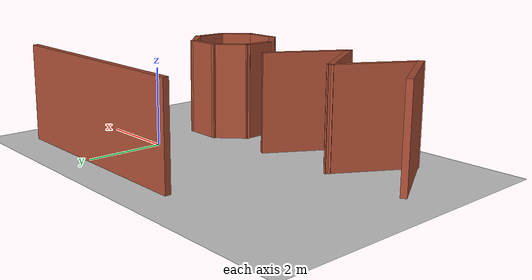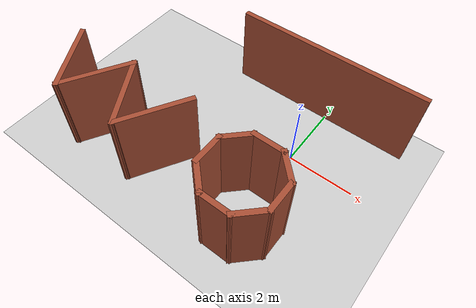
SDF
<sdf version="1.6">
 <world name="default">
  <light name="sun" type="directional">
   <pose>0 0 10 0 -0 0</pose>
   <diffuse>0.8 0.8 0.8 1</diffuse>
   <specular>0.2 0.2 0.2 1</specular>
   <attenuation>
    <range>1000</range>
    <constant>0.9</constant>
    <linear>0.01</linear>
    <quadratic>0.001</quadratic>
   </attenuation>
   <direction>-0.5 0.1 -0.9</direction>
  </light>
  <model name="ground_plane">
   <static>1</static>
   <link name="link">
    <collision name="collision">
     <geometry><plane><normal>0 0 1</normal><size>100 100</size></plane></geometry>
     <surface>
      <contact><collide_bitmask>65535</collide_bitmask></contact>
      <friction><ode><mu>100</mu><mu2>50</mu2></ode></friction>
     </surface>
    </collision>
    <visual name="visual">
     <cast_shadows>0</cast_shadows>
     <geometry><plane><normal>0 0 1</normal><size>100 100</size></plane></geometry>
     <material>
      <script><uri>file://media/materials/scripts/gazebo.material</uri><name>Gazebo/Grey</name></script>
     </material>
    </visual>
   </link>
  </model>
  <gravity>0 0 -9.8</gravity>
  <magnetic_field>6e-06 2.3e-05 -4.2e-05</magnetic_field>
  <atmosphere type="adiabatic"/>
  <physics name="default_physics" default="0" type="ode">
   <max_step_size>0.001</max_step_size>
   <real_time_factor>1</real_time_factor>
   <real_time_update_rate>1000</real_time_update_rate>
  </physics>
  <scene><ambient>0.4 0.4 0.4 1</ambient><background>0.7 0.7 0.7 1</background><shadows>1</shadows></scene>
  <audio><device>default</device></audio>
  <spherical_coordinates>
   <surface_model>EARTH_WGS84</surface_model>
   <latitude_deg>0</latitude_deg>
   <longitude_deg>0</longitude_deg>
   <elevation>0</elevation>
   <heading_deg>0</heading_deg>
  </spherical_coordinates>
  <model name="Reactive_Robot_World">
   <pose>-1.99873 -0.816574 0 0 -0 0</pose>
   <link name="Wall_10">
    <collision name="Wall_10_Collision">
     <geometry><box><size>1 0.15 2.5</size></box></geometry>
     <pose>0 0 1.25 0 -0 0</pose>
    </collision>
    <visual name="Wall_10_Visual">
     <pose>0 0 1.25 0 -0 0</pose>
     <geometry><box><size>1 0.15 2.5</size></box></geometry>
     <material>
      <script><uri>file://media/materials/scripts/gazebo.material</uri><name>Gazebo/Bricks</name></script>
      <ambient>1 1 1 1</ambient>
     </material>
     <meta><layer>0</layer></meta>
    </visual>
    <pose>1.33821 -2.49499 0 0 -0 -0.785398</pose>
   </link>
   <link name="Wall_11">
    <collision name="Wall_11_Collision">
     <geometry><box><size>1 0.15 2.5</size></box></geometry>
     <pose>0 0 1.25 0 -0 0</pose>
    </collision>
    <visual name="Wall_11_Visual">
     <pose>0 0 1.25 0 -0 0</pose>
     <geometry><box><size>1 0.15 2.5</size></box></geometry>
     <material>
      <script><uri>file://media/materials/scripts/gazebo.material</uri><name>Gazebo/Bricks</name></script>
      <ambient>1 1 1 1</ambient>
     </material>
     <meta><layer>0</layer></meta>
    </visual>
    <pose>2.06373 -2.79551 0 0 -0 0</pose>
   </link>
   <link name="Wall_12">
    <collision name="Wall_12_Collision">
     <geometry><box><size>1 0.15 2.5</size></box></geometry>
     <pose>0 0 1.25 0 -0 0</pose>
    </collision>
    <visual name="Wall_12_Visual">
     <pose>0 0 1.25 0 -0 0</pose>
     <geometry><box><size>1 0.15 2.5</size></box></geometry>
     <material>
      <script><uri>file://media/materials/scripts/gazebo.material</uri><name>Gazebo/Bricks</name></script>
      <ambient>1 1 1 1</ambient>
     </material>
     <meta><layer>0</layer></meta>
    </visual>
    <pose>2.78925 -2.49499 0 0 -0 0.785398</pose>
   </link>
   <link name="Wall_13">
    <collision name="Wall_13_Collision">
     <geometry><box><size>1 0.15 2.5</size></box></geometry>
     <pose>0 0 1.25 0 -0 0</pose>
    </collision>
    <visual name="Wall_13_Visual">
     <pose>0 0 1.25 0 -0 0</pose>
     <geometry><box><size>1 0.15 2.5</size></box></geometry>
     <material>
      <script><uri>file://media/materials/scripts/gazebo.material</uri><name>Gazebo/Bricks</name></script>
      <ambient>1 1 1 1</ambient>
     </material>
     <meta><layer>0</layer></meta>
    </visual>
    <pose>3.08977 -1.76947 0 0 -0 1.5708</pose>
   </link>
   <link name="Wall_14">
    <collision name="Wall_14_Collision">
     <geometry><box><size>1 0.15 2.5</size></box></geometry>
     <pose>0 0 1.25 0 -0 0</pose>
    </collision>
    <visual name="Wall_14_Visual">
     <pose>0 0 1.25 0 -0 0</pose>
     <geometry><box><size>1 0.15 2.5</size></box></geometry>
     <material>
      <script><uri>file://media/materials/scripts/gazebo.material</uri><name>Gazebo/Bricks</name></script>
      <ambient>1 1 1 1</ambient>
     </material>
     <meta><layer>0</layer></meta>
    </visual>
    <pose>2.78925 -1.04395 0 0 -0 2.35619</pose>
   </link>
   <link name="Wall_19">
    <collision name="Wall_19_Collision">
     <geometry><box><size>5.75 0.15 2.5</size></box></geometry>
     <pose>0 0 1.25 0 -0 0</pose>
    </collision>
    <visual name="Wall_19_Visual">
     <pose>0 0 1.25 0 -0 0</pose>
     <geometry><box><size>5.75 0.15 2.5</size></box></geometry>
     <material>
      <script><uri>file://media/materials/scripts/gazebo.material</uri><name>Gazebo/Bricks</name></script>
      <ambient>1 1 1 1</ambient>
     </material>
     <meta><layer>0</layer></meta>
    </visual>
    <pose>1.66873 2.82657 0 0 -0 0</pose>
   </link>
   <link name="Wall_2">
    <collision name="Wall_2_Collision">
     <geometry><box><size>2.25 0.15 2.5</size></box></geometry>
     <pose>0 0 1.25 0 -0 0</pose>
    </collision>
    <visual name="Wall_2_Visual">
     <pose>0 0 1.25 0 -0 0</pose>
     <geometry><box><size>2.25 0.15 2.5</size></box></geometry>
     <material>
      <script><uri>file://media/materials/scripts/gazebo.material</uri><name>Gazebo/Bricks</name></script>
      <ambient>1 1 1 1</ambient>
     </material>
     <meta><layer>0</layer></meta>
    </visual>
    <pose>-3.91627 -1.70275 0 0 -0 -1.0472</pose>
   </link>
   <link name="Wall_3">
    <collision name="Wall_3_Collision">
     <geometry><box><size>2.25 0.15 2.5</size></box></geometry>
     <pose>0 0 1.25 0 -0 0</pose>
    </collision>
    <visual name="Wall_3_Visual">
     <pose>0 0 1.25 0 -0 0</pose>
     <geometry><box><size>2.25 0.15 2.5</size></box></geometry>
     <material>
      <script><uri>file://media/materials/scripts/gazebo.material</uri><name>Gazebo/Bricks</name></script>
      <ambient>1 1 1 1</ambient>
     </material>
     <meta><layer>0</layer></meta>
    </visual>
    <pose>-2.86627 -1.70275 0 0 -0 1.0472</pose>
   </link>
   <link name="Wall_4">
    <collision name="Wall_4_Collision">
     <geometry><box><size>2.25 0.15 2.5</size></box></geometry>
     <pose>0 0 1.25 0 -0 0</pose>
    </collision>
    <visual name="Wall_4_Visual">
     <pose>0 0 1.25 0 -0 0</pose>
     <geometry><box><size>2.25 0.15 2.5</size></box></geometry>
     <material>
      <script><uri>file://media/materials/scripts/gazebo.material</uri><name>Gazebo/Bricks</name></script>
      <ambient>1 1 1 1</ambient>
     </material>
     <meta><layer>0</layer></meta>
    </visual>
    <pose>-1.81627 -1.70275 0 0 -0 -1.0472</pose>
   </link>
   <link name="Wall_5">
    <collision name="Wall_5_Collision">
     <geometry><box><size>2.25 0.15 2.5</size></box></geometry>
     <pose>0 0 1.25 0 -0 0</pose>
    </collision>
    <visual name="Wall_5_Visual">
     <pose>0 0 1.25 0 -0 0</pose>
     <geometry><box><size>2.25 0.15 2.5</size></box></geometry>
     <material>
      <script><uri>file://media/materials/scripts/gazebo.material</uri><name>Gazebo/Bricks</name></script>
      <ambient>1 1 1 1</ambient>
     </material>
     <meta><layer>0</layer></meta>
    </visual>
    <pose>-0.766274 -1.70275 0 0 -0 1.0472</pose>
   </link>
   <link name="Wall_7">
    <collision name="Wall_7_Collision">
     <geometry><box><size>1 0.15 2.5</size></box></geometry>
     <pose>0 0 1.25 0 -0 0</pose>
    </collision>
    <visual name="Wall_7_Visual">
     <pose>0 0 1.25 0 -0 0</pose>
     <geometry><box><size>1 0.15 2.5</size></box></geometry>
     <material>
      <script><uri>file://media/materials/scripts/gazebo.material</uri><name>Gazebo/Bricks</name></script>
      <ambient>1 1 1 1</ambient>
     </material>
     <meta><layer>0</layer></meta>
    </visual>
    <pose>2.06373 -0.743426 0 0 -0 3.14159</pose>
   </link>
   <link name="Wall_8">
    <collision name="Wall_8_Collision">
     <geometry><box><size>1 0.15 2.5</size></box></geometry>
     <pose>0 0 1.25 0 -0 0</pose>
    </collision>
    <visual name="Wall_8_Visual">
     <pose>0 0 1.25 0 -0 0</pose>
     <geometry><box><size>1 0.15 2.5</size></box></geometry>
     <material>
      <script><uri>file://media/materials/scripts/gazebo.material</uri><name>Gazebo/Bricks</name></script>
      <ambient>1 1 1 1</ambient>
     </material>
     <meta><layer>0</layer></meta>
    </visual>
    <pose>1.33821 -1.04395 0 0 -0 -2.35619</pose>
   </link>
   <link name="Wall_9">
    <collision name="Wall_9_Collision">
     <geometry><box><size>1 0.15 2.5</size></box></geometry>
     <pose>0 0 1.25 0 -0 0</pose>
    </collision>
    <visual name="Wall_9_Visual">
     <pose>0 0 1.25 0 -0 0</pose>
     <geometry><box><size>1 0.15 2.5</size></box></geometry>
     <material>
      <script><uri>file://media/materials/scripts/gazebo.material</uri><name>Gazebo/Bricks</name></script>
      <ambient>1 1 1 1</ambient>
     </material>
     <meta><layer>0</layer></meta>
    </visual>
    <pose>1.03768 -1.76947 0 0 -0 -1.5708</pose>
   </link>
   <static>1</static>
  </model>
 </world>
</sdf>
